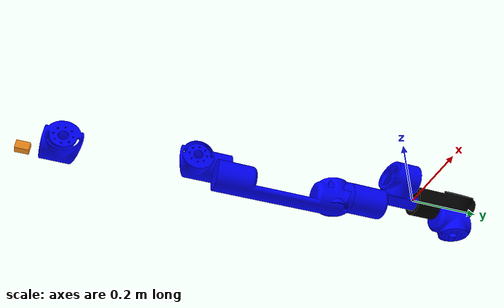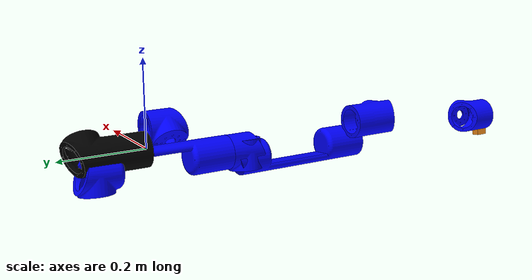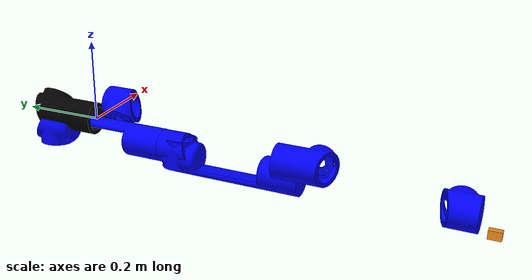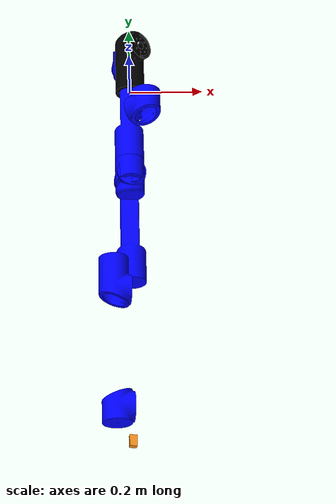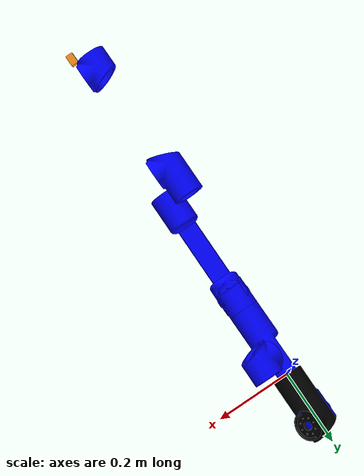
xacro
<?xml version="1.0"?>
<robot xmlns:xacro="http://ros.org/wiki/xacro" name="arm">
    <xacro:property name="link_side" value="0.02"/>
    <xacro:property name="finger_length" value="0.03"/>
    <gazebo>
        <plugin filename="libgazebo_ros_control.so" name="gazebo_ros_control">
        </plugin>
    </gazebo>

    <material name="black">
        <color rgba="0.0 0.0 0.0 0.9"/>
    </material>
    <material name="blue">
        <color rgba="0.0 0.0 255.0 0.9"/>
    </material>

    <xacro:macro name="prism_vci" params="side length mass:=1 *origin">

        <xacro:macro name="prism_geometry">
            <xacro:insert_block name="origin"/>
            <geometry>
                <box size="${side} ${side} ${length}"/>
            </geometry>
        </xacro:macro>

        <visual>
            <xacro:prism_geometry/>
            <material name="orange"/>
        </visual>

        <collision>
            <xacro:prism_geometry/>
        </collision>

        <inertial>
            <xacro:insert_block name="origin"/>
            <mass value="${mass}"/>
            <inertia ixx="${(mass/12)*(side*side+length*length)}"
                     iyy="${(mass/12)*(side*side+length*length)}"
                     izz="${(mass/6)*(side*side)}"
                     ixy="0" ixz="0" iyz="0"/>
        </inertial>

    </xacro:macro>

    <xacro:macro name="model" params="material_color stl_file_name *origin **inertial_context">
        <xacro:macro name="model_geometry">
            <xacro:insert_block name="origin"/>
            <geometry>
                <mesh filename="${stl_file_name}"/>
            </geometry>
        </xacro:macro>

        <visual>
            <xacro:model_geometry/>
            <xacro:if value="${material_color == 'black'}">
                <material name="black"/>
            </xacro:if>
            <xacro:if value="${material_color == 'blue'}">
                <material name="blue"/>
            </xacro:if>
        </visual>

        <collision>
            <xacro:model_geometry/>
        </collision>

        <inertial>
            <xacro:insert_block name="inertial_context"/>
        </inertial>

    </xacro:macro>

    <xacro:macro name="arm_joint" params="child parent type color filename axis *model_origin *origin **inertial_context">
        <joint name="${parent}_${child}_joint" type="${type}">
            <xacro:insert_block name="model_origin"/>
            <parent link="${parent}"/>
            <child link="${child}"/>
            <axis xyz="${axis}"/>
        </joint>

        <transmission name="${parent}_${child}_transmission">
            <type>transmission_interface/SimpleTransmission</type>
            <joint name="${parent}_${child}_joint">
                <hardwareInterface>hardware_interface/EffortJointInterface</hardwareInterface>
            </joint>
            <actuator name="${parent}_${child}_actuator"/>
        </transmission>
        <link name="${parent}">
            <xacro:model material_color="${color}" stl_file_name="${filename}">
                <xacro:insert_block name="origin"/>
                <xacro:insert_block name="inertial_context"/>
            </xacro:model>
        </link>

        <gazebo reference="${parent}">
            <xacro:if value="${color == 'black'}">
                <material>Gazebo/Black</material>
            </xacro:if>
            <xacro:if value="${color == 'blue'}">
                <material>Gazebo/Blue</material>
            </xacro:if>
            <turnGravityOff>true</turnGravityOff>
            <kinematic>true</kinematic>
        </gazebo>
    </xacro:macro>

    <link name="world"/>
    <joint name="world_foot_joint" type="fixed">
        <parent link="world"/>
        <child link="toe"/>
    </joint>

    <xacro:arm_joint parent="toe" child="foot" axis="0 1 0" color="black" type="continuous"
                     filename="package://kv_description/meshes/toe_foot_link.stl">
        <origin
                xyz="0 -0.06 0"
                rpy="3.1416 0.91035 -7.8821E-17" />
        <origin xyz="0 0 0" rpy="0 0 0" />
        <remaining>
            <inertial>
                <origin
                        xyz="0.0026874 0.094598 0.0043029"
                        rpy="0 0 0" />
                <mass
                        value="0.19306" />
                <inertia
                        ixx="0.00029801"
                        ixy="-1.6027E-05"
                        ixz="-1.3904E-06"
                        iyy="3.0946E-06"
                        iyz="-2.5661E-05"
                        izz="0.00029666" />
            </inertial>
        </remaining>
    </xacro:arm_joint>

    <xacro:arm_joint parent="foot" child="thigh" axis="0 0 1" color="blue" type="continuous"
                     filename="package://kv_description/meshes/foot_thigh_link.stl">
        <origin
                xyz="0.024767 0.135 0.024767"
                rpy="3.1342 0.78537 -0.010507" />
        <origin xyz="0 0 0" rpy="0 0 0" />
        <remaining>
            <inertial>
                <origin
                        xyz="-0.0021034 -0.0050999 -0.045876"
                        rpy="0 0 0" />
                <mass
                        value="0.10494" />
                <inertia
                        ixx="0"
                        ixy="0"
                        ixz="0"
                        iyy="0"
                        iyz="0"
                        izz="0" />
            </inertial>
        </remaining>
    </xacro:arm_joint>

    <xacro:arm_joint parent="thigh" child="calf" axis="0 1 0" color="blue" type="continuous"
                     filename="package://kv_description/meshes/thigh_calf_link.stl">
        <origin
                xyz="0 -0.044415 -0.054974"
                rpy="3.1416 -0.0038068 -1.0114E-15" />
        <origin xyz="0 0 0" rpy="0 0 0" />
        <remaining>
            <inertial>
                <origin
                        xyz="0.00027997 0.12036 0.0040096"
                        rpy="0 0 0" />
                <mass
                        value="0.7878" />
                <inertia
                        ixx="0.0072279"
                        ixy="-4.1933E-05"
                        ixz="2.8902E-06"
                        iyy="6.9814E-05"
                        iyz="-6.6258E-05"
                        izz="0.0071588" />
            </inertial>
        </remaining>
    </xacro:arm_joint>

    <xacro:arm_joint parent="calf" child="big_arm" axis="0 0 -1" color="blue" type="continuous"
                     filename="package://kv_description/meshes/calf_big_arm_link.stl">
        <origin
                xyz="0 0.31559 -0.035401"
                rpy="1.473E-16 6.0222E-16 -3.1339" />
        <origin xyz="0 0 0" rpy="0 0 0" />
        <remaining>
            <inertial>
                <origin
                        xyz="-0.0021034 -0.0050999 -0.045501"
                        rpy="0 0 0" />
                <mass
                        value="0.10494" />
                <inertia
                        ixx="0"
                        ixy="0"
                        ixz="0"
                        iyy="0"
                        iyz="0"
                        izz="0" />
            </inertial>
        </remaining>
    </xacro:arm_joint>

    <xacro:arm_joint parent="big_arm" child="arm" axis="0 1 0" color="blue" type="continuous"
                     filename="package://kv_description/meshes/big_arm_arm_link.stl">
        <origin
                xyz="0 -0.045 -0.054599"
                rpy="3.1416 -0.0051076 -4.0902E-17" />
        <origin xyz="0 0 0" rpy="0 0 0" />
        <remaining>
            <inertial>
                <origin
                        xyz="0.00027996 0.11978 0.0040096"
                        rpy="0 0 0" />
                <mass
                        value="0.7878" />
                <inertia
                        ixx="0.0072278"
                        ixy="-4.1931E-05"
                        ixz="2.8901E-06"
                        iyy="6.9814E-05"
                        iyz="-6.6259E-05"
                        izz="0.0071588" />
            </inertial>
        </remaining>
    </xacro:arm_joint>

    <xacro:arm_joint parent="arm" child="hand" axis="-1 0 0" color="blue" type="continuous"
                     filename="package://kv_description/meshes/arm_hand_link.stl">
        <origin
                xyz="0 0.315 -0.035719"
                rpy="3.1364 1.5708 0" />
        <origin xyz="0 0 0" rpy="0 0 0" />
        <remaining>
            <inertial>
                <origin
                        xyz="0.048329 -0.024492 -0.0013759"
                        rpy="0 0 0" />
                <mass
                        value="0.16041" />
                <inertia
                        ixx="0.00010345"
                        ixy="1.4301E-05"
                        ixz="-4.5751E-07"
                        iyy="2.0848E-06"
                        iyz="3.3061E-06"
                        izz="0.00010532" />
            </inertial>
        </remaining>
    </xacro:arm_joint>

    <xacro:arm_joint parent="hand" child="finger" axis="0 0 -1" color="blue" type="continuous"
                     filename="package://kv_description/meshes/hand_finger_link.stl">
        <origin
                xyz="0.054281 -0.0896 0"
                rpy="-1.5708 -1.5553 -4.3394E-13" />
        <origin xyz="0 0 0" rpy="0 0 0" />
        <remaining>
            <inertial>
                <origin
                        xyz="-0.0018551 -0.0095131 -0.037375"
                        rpy="0 0 0" />
                <mass
                        value="0.11897" />
                <inertia
                        ixx="0"
                        ixy="0"
                        ixz="0"
                        iyy="0"
                        iyz="0"
                        izz="0" />
            </inertial>
        </remaining>
    </xacro:arm_joint>

    <link name="finger">
        <xacro:prism_vci length="${finger_length}" side="${link_side}">
            <origin xyz="0 0 ${finger_length/2}" rpy="0 0 0"/>
        </xacro:prism_vci>
    </link>
    <gazebo reference="finger">
        <material>Gazebo/Red</material>
        <sensor type="camera" name="camera1">
            <update_rate>30.0</update_rate>
            <camera name="head">
                <horizontal_fov>1.3962634</horizontal_fov>
                <image>
                    <width>1280</width>
                    <height>720</height>
                    <format>R8G8B8</format>
                </image>
                <clip>
                    <near>0.02</near>
                    <far>300</far>
                </clip>
                <noise>
                    <type>gaussian</type>
                    <mean>0.0</mean>
                    <stddev>0.007</stddev>
                </noise>
            </camera>
            <plugin name="camera_controller" filename="libgazebo_ros_camera.so">
                <alwaysOn>true</alwaysOn>
                <updateRate>0.0</updateRate>
                <cameraName>kv/camera1</cameraName>
                <imageTopicName>image_raw</imageTopicName>
                <cameraInfoTopicName>camera_info</cameraInfoTopicName>
                <frameName>camera_link</frameName>
                <hackBaseline>0.07</hackBaseline>
                <distortionK1>0.0</distortionK1>
                <distortionK2>0.0</distortionK2>
                <distortionK3>0.0</distortionK3>
                <distortionT1>0.0</distortionT1>
                <distortionT2>0.0</distortionT2>
            </plugin>
        </sensor>
    </gazebo>

</robot>
